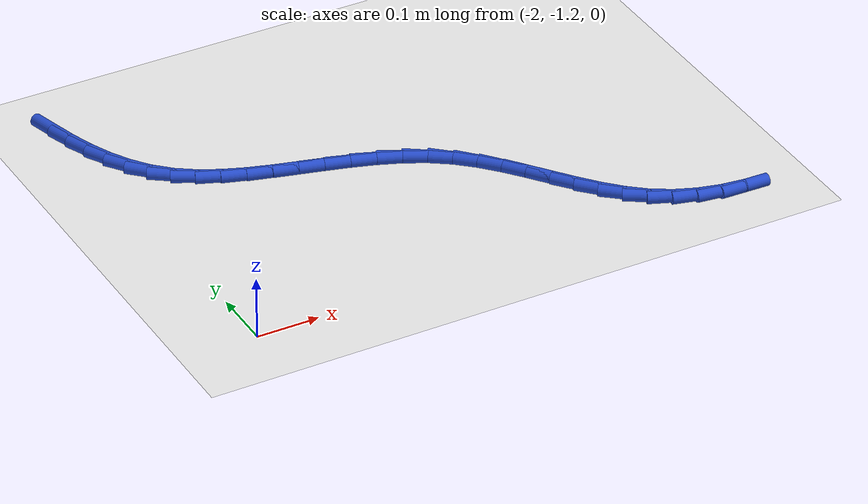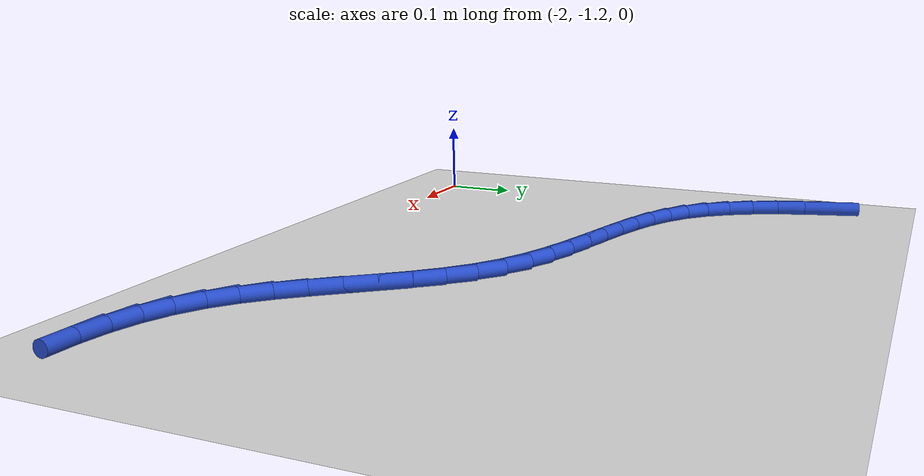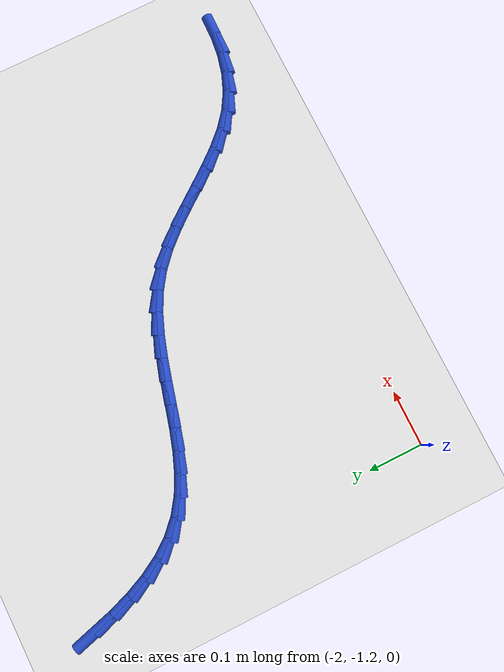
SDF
<sdf version="1.6">
 <world name="default">
  <model name="ground_plane">
   <static>1</static>
   <link name="link">
    <collision name="collision">
     <geometry><plane><normal>0 0 1</normal><size>100 100</size></plane></geometry>
     <surface><friction><ode><mu>100</mu><mu2>50</mu2></ode></friction></surface>
    </collision>
    <visual name="visual">
     <cast_shadows>0</cast_shadows>
     <geometry><plane><normal>0 0 1</normal><size>100 100</size></plane></geometry>
     <material>
      <script><uri>file://media/materials/scripts/gazebo.material</uri><name>Gazebo/WhiteGlow</name></script>
     </material>
    </visual>
   </link>
  </model>
  <model name="line">
   <link name="link_104">
    <pose>-2.028077099082377 -0.5757508193930498 0.01 0 1.57 -1.3044253640620618</pose>
    <collision name="collision">
     <geometry><cylinder><radius>0.01</radius><length>0.08</length></cylinder></geometry>
    </collision>
    <visual name="visual">
     <material>
      <script><name>Gazebo/Blue</name><uri>file://media/materials/scripts/gazebo.material</uri></script>
     </material>
     <geometry><cylinder><radius>0.01</radius><length>0.08</length></cylinder></geometry>
    </visual>
   </link>
   <link name="link_105">
    <pose>-2.0172899786667533 -0.6152850739291343 0.01 0 1.57 -1.23919419414435</pose>
    <collision name="collision">
     <geometry><cylinder><radius>0.01</radius><length>0.08</length></cylinder></geometry>
    </collision>
    <visual name="visual">
     <material>
      <script><name>Gazebo/Blue</name><uri>file://media/materials/scripts/gazebo.material</uri></script>
     </material>
     <geometry><cylinder><radius>0.01</radius><length>0.08</length></cylinder></geometry>
    </visual>
   </link>
   <link name="link_106">
    <pose>-2.0042577591336985 -0.6531346694956948 0.01 0 1.57 -1.156462589092909</pose>
    <collision name="collision">
     <geometry><cylinder><radius>0.01</radius><length>0.08</length></cylinder></geometry>
    </collision>
    <visual name="visual">
     <material>
      <script><name>Gazebo/Blue</name><uri>file://media/materials/scripts/gazebo.material</uri></script>
     </material>
     <geometry><cylinder><radius>0.01</radius><length>0.08</length></cylinder></geometry>
    </visual>
   </link>
   <link name="link_107">
    <pose>-1.9886225258641583 -0.6886859867900388 0.01 0 1.57 -1.0529199297554144</pose>
    <collision name="collision">
     <geometry><cylinder><radius>0.01</radius><length>0.08</length></cylinder></geometry>
    </collision>
    <visual name="visual">
     <material>
      <script><name>Gazebo/Blue</name><uri>file://media/materials/scripts/gazebo.material</uri></script>
     </material>
     <geometry><cylinder><radius>0.01</radius><length>0.08</length></cylinder></geometry>
    </visual>
   </link>
   <link name="link_108">
    <pose>-1.9700263642390774 -0.7213254065094739 0.01 0 1.57 -0.9255481902453528</pose>
    <collision name="collision">
     <geometry><cylinder><radius>0.01</radius><length>0.08</length></cylinder></geometry>
    </collision>
    <visual name="visual">
     <material>
      <script><name>Gazebo/Blue</name><uri>file://media/materials/scripts/gazebo.material</uri></script>
     </material>
     <geometry><cylinder><radius>0.01</radius><length>0.08</length></cylinder></geometry>
    </visual>
   </link>
   <link name="link_109">
    <pose>-1.9481113596393986 -0.7504393093513082 0.01 0 1.57 -0.7731993313966039</pose>
    <collision name="collision">
     <geometry><cylinder><radius>0.01</radius><length>0.08</length></cylinder></geometry>
    </collision>
    <visual name="visual">
     <material>
      <script><name>Gazebo/Blue</name><uri>file://media/materials/scripts/gazebo.material</uri></script>
     </material>
     <geometry><cylinder><radius>0.01</radius><length>0.08</length></cylinder></geometry>
    </visual>
   </link>
   <link name="link_110">
    <pose>-1.922519643569714 -0.7754141419883697 0.01 0 1.57 -0.6090772099344316</pose>
    <collision name="collision">
     <geometry><cylinder><radius>0.01</radius><length>0.08</length></cylinder></geometry>
    </collision>
    <visual name="visual">
     <material>
      <script><name>Gazebo/Blue</name><uri>file://media/materials/scripts/gazebo.material</uri></script>
     </material>
     <geometry><cylinder><radius>0.01</radius><length>0.08</length></cylinder></geometry>
    </visual>
   </link>
   <link name="link_111">
    <pose>-1.8931017642361099 -0.7959344715075855 0.01 0 1.57 -0.4729348619481998</pose>
    <collision name="collision">
     <geometry><cylinder><radius>0.01</radius><length>0.08</length></cylinder></geometry>
    </collision>
    <visual name="visual">
     <material>
      <script><name>Gazebo/Blue</name><uri>file://media/materials/scripts/gazebo.material</uri></script>
     </material>
     <geometry><cylinder><radius>0.01</radius><length>0.08</length></cylinder></geometry>
    </visual>
   </link>
   <link name="link_112">
    <pose>-1.860396113954392 -0.8126687610529256 0.01 0 1.57 -0.3730158302325071</pose>
    <collision name="collision">
     <geometry><cylinder><radius>0.01</radius><length>0.08</length></cylinder></geometry>
    </collision>
    <visual name="visual">
     <material>
      <script><name>Gazebo/Blue</name><uri>file://media/materials/scripts/gazebo.material</uri></script>
     </material>
     <geometry><cylinder><radius>0.01</radius><length>0.08</length></cylinder></geometry>
    </visual>
   </link>
   <link name="link_113">
    <pose>-1.8250827864426147 -0.8264881642457218 0.01 0 1.57 -0.3062544314748872</pose>
    <collision name="collision">
     <geometry><cylinder><radius>0.01</radius><length>0.08</length></cylinder></geometry>
    </collision>
    <visual name="visual">
     <material>
      <script><name>Gazebo/Blue</name><uri>file://media/materials/scripts/gazebo.material</uri></script>
     </material>
     <geometry><cylinder><radius>0.01</radius><length>0.08</length></cylinder></geometry>
    </visual>
   </link>
   <link name="link_114">
    <pose>-1.7878418754188308 -0.8382638347073048 0.01 0 1.57 -0.2688198147052672</pose>
    <collision name="collision">
     <geometry><cylinder><radius>0.01</radius><length>0.08</length></cylinder></geometry>
    </collision>
    <visual name="visual">
     <material>
      <script><name>Gazebo/Blue</name><uri>file://media/materials/scripts/gazebo.material</uri></script>
     </material>
     <geometry><cylinder><radius>0.01</radius><length>0.08</length></cylinder></geometry>
    </visual>
   </link>
   <link name="link_115">
    <pose>-1.7493534746010935 -0.8488669260590065 0.01 0 1.57 -0.2578941344113044</pose>
    <collision name="collision">
     <geometry><cylinder><radius>0.01</radius><length>0.08</length></cylinder></geometry>
    </collision>
    <visual name="visual">
     <material>
      <script><name>Gazebo/Blue</name><uri>file://media/materials/scripts/gazebo.material</uri></script>
     </material>
     <geometry><cylinder><radius>0.01</radius><length>0.08</length></cylinder></geometry>
    </visual>
   </link>
   <link name="link_116">
    <pose>-1.7102976777074579 -0.8591685919221577 0.01 0 1.57 -0.2722305165483952</pose>
    <collision name="collision">
     <geometry><cylinder><radius>0.01</radius><length>0.08</length></cylinder></geometry>
    </collision>
    <visual name="visual">
     <material>
      <script><name>Gazebo/Blue</name><uri>file://media/materials/scripts/gazebo.material</uri></script>
     </material>
     <geometry><cylinder><radius>0.01</radius><length>0.08</length></cylinder></geometry>
    </visual>
   </link>
   <link name="link_117">
    <pose>-1.6713545784559773 -0.8700399859180901 0.01 0 1.57 -0.31217803191855525</pose>
    <collision name="collision">
     <geometry><cylinder><radius>0.01</radius><length>0.08</length></cylinder></geometry>
    </collision>
    <visual name="visual">
     <material>
      <script><name>Gazebo/Blue</name><uri>file://media/materials/scripts/gazebo.material</uri></script>
     </material>
     <geometry><cylinder><radius>0.01</radius><length>0.08</length></cylinder></geometry>
    </visual>
   </link>
   <link name="link_118">
    <pose>-1.6332042705647047 -0.8823522616681349 0.01 0 1.57 -0.379409243069829</pose>
    <collision name="collision">
     <geometry><cylinder><radius>0.01</radius><length>0.08</length></cylinder></geometry>
    </collision>
    <visual name="visual">
     <material>
      <script><name>Gazebo/Blue</name><uri>file://media/materials/scripts/gazebo.material</uri></script>
     </material>
     <geometry><cylinder><radius>0.01</radius><length>0.08</length></cylinder></geometry>
    </visual>
   </link>
   <link name="link_119">
    <pose>-1.5965268477516945 -0.8969765727936237 0.01 0 1.57 -0.47620280439705664</pose>
    <collision name="collision">
     <geometry><cylinder><radius>0.01</radius><length>0.08</length></cylinder></geometry>
    </collision>
    <visual name="visual">
     <material>
      <script><name>Gazebo/Blue</name><uri>file://media/materials/scripts/gazebo.material</uri></script>
     </material>
     <geometry><cylinder><radius>0.01</radius><length>0.08</length></cylinder></geometry>
    </visual>
   </link>
   <link name="link_120">
    <pose>-1.5620024037349993 -0.9147840729158884 0.01 0 1.57 -0.6034488706499515</pose>
    <collision name="collision">
     <geometry><cylinder><radius>0.01</radius><length>0.08</length></cylinder></geometry>
    </collision>
    <visual name="visual">
     <material>
      <script><name>Gazebo/Blue</name><uri>file://media/materials/scripts/gazebo.material</uri></script>
     </material>
     <geometry><cylinder><radius>0.01</radius><length>0.08</length></cylinder></geometry>
    </visual>
   </link>
   <link name="link_121">
    <pose>-1.5303016802931246 -0.9366325885647507 0.01 0 1.57 -0.7351897646977354</pose>
    <collision name="collision">
     <geometry><cylinder><radius>0.01</radius><length>0.08</length></cylinder></geometry>
    </collision>
    <visual name="visual">
     <material>
      <script><name>Gazebo/Blue</name><uri>file://media/materials/scripts/gazebo.material</uri></script>
     </material>
     <geometry><cylinder><radius>0.01</radius><length>0.08</length></cylinder></geometry>
    </visual>
   </link>
   <link name="link_122">
    <pose>-1.5015629881814827 -0.9626211991749413 0.01 0 1.57 -0.8326793952744556</pose>
    <collision name="collision">
     <geometry><cylinder><radius>0.01</radius><length>0.08</length></cylinder></geometry>
    </collision>
    <visual name="visual">
     <material>
      <script><name>Gazebo/Blue</name><uri>file://media/materials/scripts/gazebo.material</uri></script>
     </material>
     <geometry><cylinder><radius>0.01</radius><length>0.08</length></cylinder></geometry>
    </visual>
   </link>
   <link name="link_123">
    <pose>-1.47511545469573 -0.9916958477694118 0.01 0 1.57 -0.8943479121755784</pose>
    <collision name="collision">
     <geometry><cylinder><radius>0.01</radius><length>0.08</length></cylinder></geometry>
    </collision>
    <visual name="visual">
     <material>
      <script><name>Gazebo/Blue</name><uri>file://media/materials/scripts/gazebo.material</uri></script>
     </material>
     <geometry><cylinder><radius>0.01</radius><length>0.08</length></cylinder></geometry>
    </visual>
   </link>
   <link name="link_124">
    <pose>-1.4502204465159505 -1.022705914308488 0.01 0 1.57 -0.9225822942327019</pose>
    <collision name="collision">
     <geometry><cylinder><radius>0.01</radius><length>0.08</length></cylinder></geometry>
    </collision>
    <visual name="visual">
     <material>
      <script><name>Gazebo/Blue</name><uri>file://media/materials/scripts/gazebo.material</uri></script>
     </material>
     <geometry><cylinder><radius>0.01</radius><length>0.08</length></cylinder></geometry>
    </visual>
   </link>
   <link name="link_125">
    <pose>-1.4261393303222312 -1.0545007787524963 0.01 0 1.57 -0.9185144275205274</pose>
    <collision name="collision">
     <geometry><cylinder><radius>0.01</radius><length>0.08</length></cylinder></geometry>
    </collision>
    <visual name="visual">
     <material>
      <script><name>Gazebo/Blue</name><uri>file://media/materials/scripts/gazebo.material</uri></script>
     </material>
     <geometry><cylinder><radius>0.01</radius><length>0.08</length></cylinder></geometry>
    </visual>
   </link>
   <link name="link_126">
    <pose>-1.4021334727946553 -1.0859298210617634 0.01 0 1.57 -0.8811686281997465</pose>
    <collision name="collision">
     <geometry><cylinder><radius>0.01</radius><length>0.08</length></cylinder></geometry>
    </collision>
    <visual name="visual">
     <material>
      <script><name>Gazebo/Blue</name><uri>file://media/materials/scripts/gazebo.material</uri></script>
     </material>
     <geometry><cylinder><radius>0.01</radius><length>0.08</length></cylinder></geometry>
    </visual>
   </link>
   <link name="link_127">
    <pose>-1.37746424061331 -1.1158424211966147 0.01 0 1.57 -0.8074195229120577</pose>
    <collision name="collision">
     <geometry><cylinder><radius>0.01</radius><length>0.08</length></cylinder></geometry>
    </collision>
    <visual name="visual">
     <material>
      <script><name>Gazebo/Blue</name><uri>file://media/materials/scripts/gazebo.material</uri></script>
     </material>
     <geometry><cylinder><radius>0.01</radius><length>0.08</length></cylinder></geometry>
    </visual>
   </link>
   <link name="link_128">
    <pose>-1.3513930004582795 -1.143087959117377 0.01 0 1.57 -0.6930195101556363</pose>
    <collision name="collision">
     <geometry><cylinder><radius>0.01</radius><length>0.08</length></cylinder></geometry>
    </collision>
    <visual name="visual">
     <material>
      <script><name>Gazebo/Blue</name><uri>file://media/materials/scripts/gazebo.material</uri></script>
     </material>
     <geometry><cylinder><radius>0.01</radius><length>0.08</length></cylinder></geometry>
    </visual>
   </link>
   <link name="link_129">
    <pose>-1.323181119009649 -1.166515814784376 0.01 0 1.57 -0.5401564385935118</pose>
    <collision name="collision">
     <geometry><cylinder><radius>0.01</radius><length>0.08</length></cylinder></geometry>
    </collision>
    <visual name="visual">
     <material>
      <script><name>Gazebo/Blue</name><uri>file://media/materials/scripts/gazebo.material</uri></script>
     </material>
     <geometry><cylinder><radius>0.01</radius><length>0.08</length></cylinder></geometry>
    </visual>
   </link>
   <link name="link_130">
    <pose>-1.292186059513252 -1.1851017633191514 0.01 0 1.57 -0.385370653889656</pose>
    <collision name="collision">
     <geometry><cylinder><radius>0.01</radius><length>0.08</length></cylinder></geometry>
    </collision>
    <visual name="visual">
     <material>
      <script><name>Gazebo/Blue</name><uri>file://media/materials/scripts/gazebo.material</uri></script>
     </material>
     <geometry><cylinder><radius>0.01</radius><length>0.08</length></cylinder></geometry>
    </visual>
   </link>
   <link name="link_131">
    <pose>-1.2584876170567245 -1.1987716580159908 0.01 0 1.57 -0.24794355528386386</pose>
    <collision name="collision">
     <geometry><cylinder><radius>0.01</radius><length>0.08</length></cylinder></geometry>
    </collision>
    <visual name="visual">
     <material>
      <script><name>Gazebo/Blue</name><uri>file://media/materials/scripts/gazebo.material</uri></script>
     </material>
     <geometry><cylinder><radius>0.01</radius><length>0.08</length></cylinder></geometry>
    </visual>
   </link>
   <link name="link_132">
    <pose>-1.2224941414258823 -1.2078834979354731 0.01 0 1.57 -0.12900905332379733</pose>
    <collision name="collision">
     <geometry><cylinder><radius>0.01</radius><length>0.08</length></cylinder></geometry>
    </collision>
    <visual name="visual">
     <material>
      <script><name>Gazebo/Blue</name><uri>file://media/materials/scripts/gazebo.material</uri></script>
     </material>
     <geometry><cylinder><radius>0.01</radius><length>0.08</length></cylinder></geometry>
    </visual>
   </link>
   <link name="link_133">
    <pose>-1.184615637960433 -1.2127974596769873 0.01 0 1.57 -0.027341691264683148</pose>
    <collision name="collision">
     <geometry><cylinder><radius>0.01</radius><length>0.08</length></cylinder></geometry>
    </collision>
    <visual name="visual">
     <material>
      <script><name>Gazebo/Blue</name><uri>file://media/materials/scripts/gazebo.material</uri></script>
     </material>
     <geometry><cylinder><radius>0.01</radius><length>0.08</length></cylinder></geometry>
    </visual>
   </link>
  </model>
 </world>
</sdf>
